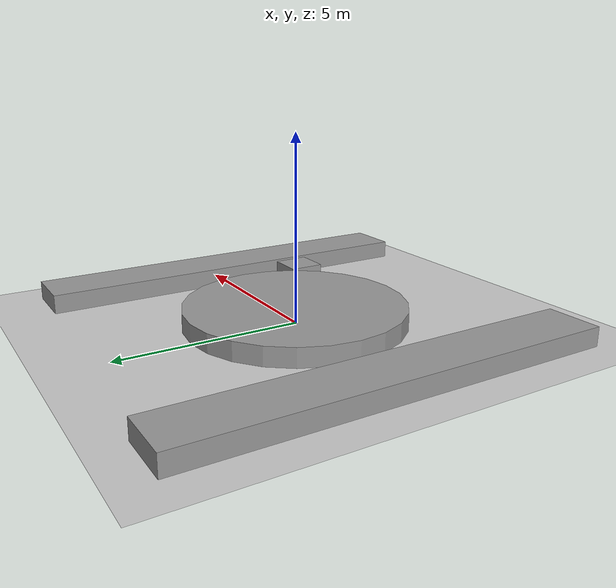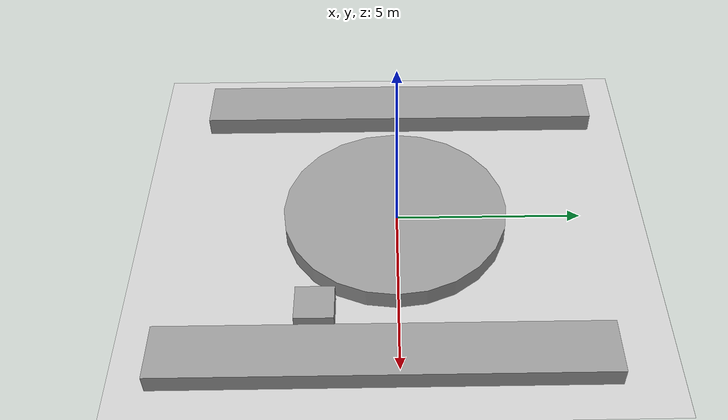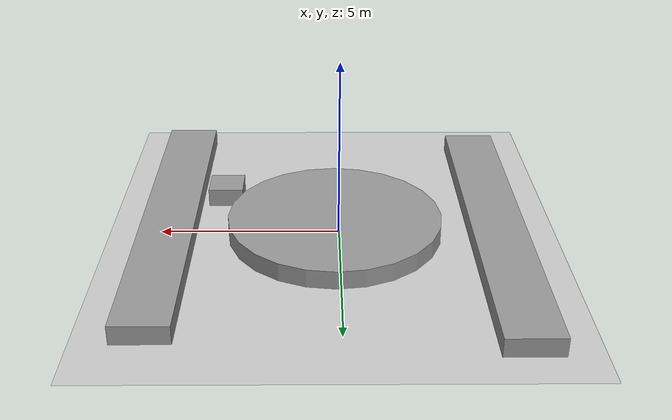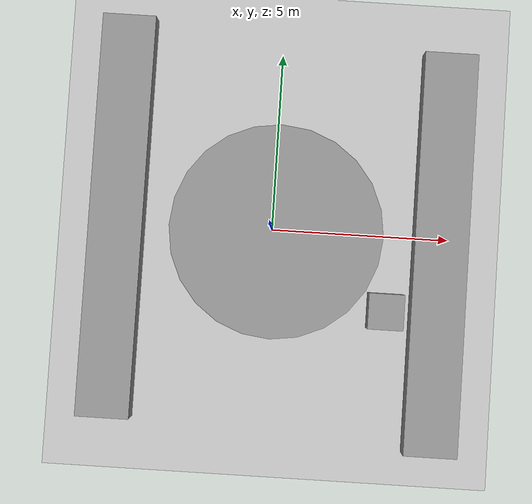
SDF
<sdf version="1.6">
 <world name="default">
  <light name="sun" type="directional">
   <pose>0 0 10 0 -0 0</pose>
   <diffuse>0.8 0.8 0.8 1</diffuse>
   <specular>0.1 0.1 0.1 1</specular>
   <attenuation>
    <range>1000</range>
    <constant>0.9</constant>
    <linear>0.01</linear>
    <quadratic>0.001</quadratic>
   </attenuation>
   <direction>-0.5 0.5 -1</direction>
  </light>
  <model name="ground_plane">
   <static>1</static>
   <link name="link">
    <collision name="collision">
     <geometry><plane><normal>0 0 1</normal><size>100 100</size></plane></geometry>
     <surface><friction><ode><mu>100</mu><mu2>50</mu2></ode></friction></surface>
    </collision>
    <visual name="visual">
     <cast_shadows>0</cast_shadows>
     <geometry><plane><normal>0 0 1</normal><size>100 100</size></plane></geometry>
     <material>
      <script><uri>file://media/materials/scripts/gazebo.material</uri><name>Gazebo/Grey</name></script>
     </material>
    </visual>
   </link>
  </model>
  <gravity>0 0 -9.8</gravity>
  <magnetic_field>6e-06 2.3e-05 -4.2e-05</magnetic_field>
  <atmosphere type="adiabatic"/>
  <physics name="default_physics" default="0" type="ode">
   <max_step_size>0.001</max_step_size>
   <real_time_factor>1</real_time_factor>
   <real_time_update_rate>1000</real_time_update_rate>
  </physics>
  <scene><ambient>0.4 0.4 0.4 1</ambient><background>0.7 0.7 0.7 1</background><shadows>1</shadows></scene>
  <spherical_coordinates>
   <surface_model>EARTH_WGS84</surface_model>
   <latitude_deg>0</latitude_deg>
   <longitude_deg>0</longitude_deg>
   <elevation>0</elevation>
   <heading_deg>0</heading_deg>
  </spherical_coordinates>
  <audio><device>default</device></audio>
  <model name="unit_cylinder">
   <link name="link">
    <inertial>
     <mass>1</mass>
     <inertia><ixx>0.145833</ixx><ixy>0</ixy><ixz>0</ixz><iyy>0.145833</iyy><iyz>0</iyz><izz>0.125</izz></inertia>
    </inertial>
    <visual name="visual">
     <geometry><cylinder><radius>2.99181</radius><length>1</length></cylinder></geometry>
     <material>
      <script><name>Gazebo/Grey</name><uri>file://media/materials/scripts/gazebo.material</uri></script>
     </material>
    </visual>
    <collision name="collision">
     <geometry><cylinder><radius>2.99181</radius><length>1</length></cylinder></geometry>
     <surface>
      <friction>
       <ode><mu>1</mu><mu2>1</mu2><fdir1>0 0 0</fdir1><slip1>0</slip1><slip2>0</slip2></ode>
       <torsional>
        <coefficient>1</coefficient>
        <patch_radius>0</patch_radius>
        <surface_radius>0</surface_radius>
        <use_patch_radius>1</use_patch_radius>
        <ode><slip>0</slip></ode>
       </torsional>
      </friction>
      <bounce><restitution_coefficient>0</restitution_coefficient><threshold>1e+06</threshold></bounce>
      <contact>
       <collide_without_contact>0</collide_without_contact>
       <collide_without_contact_bitmask>1</collide_without_contact_bitmask>
       <collide_bitmask>1</collide_bitmask>
       <ode>
        <soft_cfm>0</soft_cfm>
        <soft_erp>0.2</soft_erp>
        <kp>1e+13</kp>
        <kd>1</kd>
        <max_vel>0.01</max_vel>
        <min_depth>0</min_depth>
       </ode>
       <bullet>
        <split_impulse>1</split_impulse>
        <split_impulse_penetration_threshold>-0.01</split_impulse_penetration_threshold>
        <soft_cfm>0</soft_cfm>
        <soft_erp>0.2</soft_erp>
        <kp>1e+13</kp>
        <kd>1</kd>
       </bullet>
      </contact>
     </surface>
    </collision>
   </link>
   <static>1</static>
   <pose>0.11731 -0.051632 0 0 -0 0</pose>
  </model>
  <model name="unit_box_long">
   <link name="link">
    <inertial>
     <mass>1</mass>
     <inertia>
      <ixx>0.166667</ixx>
      <ixy>0</ixy>
      <ixz>0</ixz>
      <iyy>0.166667</iyy>
      <iyz>0</iyz>
      <izz>0.166667</izz>
     </inertia>
    </inertial>
    <visual name="visual">
     <geometry><box><size>1.49801 11.278 1</size></box></geometry>
     <material>
      <script><name>Gazebo/Grey</name><uri>file://media/materials/scripts/gazebo.material</uri></script>
     </material>
    </visual>
    <collision name="collision">
     <geometry><box><size>1.49801 11.278 1</size></box></geometry>
     <surface>
      <friction>
       <ode><mu>1</mu><mu2>1</mu2><fdir1>0 0 0</fdir1><slip1>0</slip1><slip2>0</slip2></ode>
       <torsional>
        <coefficient>1</coefficient>
        <patch_radius>0</patch_radius>
        <surface_radius>0</surface_radius>
        <use_patch_radius>1</use_patch_radius>
        <ode><slip>0</slip></ode>
       </torsional>
      </friction>
      <bounce><restitution_coefficient>0</restitution_coefficient><threshold>1e+06</threshold></bounce>
      <contact>
       <collide_without_contact>0</collide_without_contact>
       <collide_without_contact_bitmask>1</collide_without_contact_bitmask>
       <collide_bitmask>1</collide_bitmask>
       <ode>
        <soft_cfm>0</soft_cfm>
        <soft_erp>0.2</soft_erp>
        <kp>1e+13</kp>
        <kd>1</kd>
        <max_vel>0.01</max_vel>
        <min_depth>0</min_depth>
       </ode>
       <bullet>
        <split_impulse>1</split_impulse>
        <split_impulse_penetration_threshold>-0.01</split_impulse_penetration_threshold>
        <soft_cfm>0</soft_cfm>
        <soft_erp>0.2</soft_erp>
        <kp>1e+13</kp>
        <kd>1</kd>
       </bullet>
      </contact>
     </surface>
    </collision>
   </link>
   <static>1</static>
   <pose>-4.37521 0.14661 0 0 -0 0</pose>
  </model>
  <model name="unit_box_long_0">
   <link name="link">
    <inertial>
     <mass>1</mass>
     <inertia>
      <ixx>0.166667</ixx>
      <ixy>0</ixy>
      <ixz>0</ixz>
      <iyy>0.166667</iyy>
      <iyz>0</iyz>
      <izz>0.166667</izz>
     </inertia>
    </inertial>
    <visual name="visual">
     <geometry><box><size>1.49801 11.278 1</size></box></geometry>
     <material>
      <script><name>Gazebo/Grey</name><uri>file://media/materials/scripts/gazebo.material</uri></script>
     </material>
    </visual>
    <collision name="collision">
     <geometry><box><size>1.49801 11.278 1</size></box></geometry>
     <surface>
      <friction>
       <ode><mu>1</mu><mu2>1</mu2><fdir1>0 0 0</fdir1><slip1>0</slip1><slip2>0</slip2></ode>
       <torsional>
        <coefficient>1</coefficient>
        <patch_radius>0</patch_radius>
        <surface_radius>0</surface_radius>
        <use_patch_radius>1</use_patch_radius>
        <ode><slip>0</slip></ode>
       </torsional>
      </friction>
      <bounce><restitution_coefficient>0</restitution_coefficient><threshold>1e+06</threshold></bounce>
      <contact>
       <collide_without_contact>0</collide_without_contact>
       <collide_without_contact_bitmask>1</collide_without_contact_bitmask>
       <collide_bitmask>1</collide_bitmask>
       <ode>
        <soft_cfm>0</soft_cfm>
        <soft_erp>0.2</soft_erp>
        <kp>1e+13</kp>
        <kd>1</kd>
        <max_vel>0.01</max_vel>
        <min_depth>0</min_depth>
       </ode>
       <bullet>
        <split_impulse>1</split_impulse>
        <split_impulse_penetration_threshold>-0.01</split_impulse_penetration_threshold>
        <soft_cfm>0</soft_cfm>
        <soft_erp>0.2</soft_erp>
        <kp>1e+13</kp>
        <kd>1</kd>
       </bullet>
      </contact>
     </surface>
    </collision>
   </link>
   <static>1</static>
   <pose>4.74529 -0.373774 0 0 -0 0</pose>
  </model>
  <model name="unit_box">
   <link name="link">
    <inertial>
     <mass>1</mass>
     <inertia>
      <ixx>0.166667</ixx>
      <ixy>0</ixy>
      <ixz>0</ixz>
      <iyy>0.166667</iyy>
      <iyz>0</iyz>
      <izz>0.166667</izz>
     </inertia>
    </inertial>
    <visual name="visual">
     <geometry><box><size>1 1 1</size></box></geometry>
     <material>
      <script><name>Gazebo/Grey</name><uri>file://media/materials/scripts/gazebo.material</uri></script>
     </material>
    </visual>
    <collision name="collision">
     <geometry><box><size>1 1 1</size></box></geometry>
     <surface>
      <friction>
       <ode><mu>1</mu><mu2>1</mu2><fdir1>0 0 0</fdir1><slip1>0</slip1><slip2>0</slip2></ode>
       <torsional>
        <coefficient>1</coefficient>
        <patch_radius>0</patch_radius>
        <surface_radius>0</surface_radius>
        <use_patch_radius>1</use_patch_radius>
        <ode><slip>0</slip></ode>
       </torsional>
      </friction>
      <bounce><restitution_coefficient>0</restitution_coefficient><threshold>1e+06</threshold></bounce>
      <contact>
       <collide_without_contact>0</collide_without_contact>
       <collide_without_contact_bitmask>1</collide_without_contact_bitmask>
       <collide_bitmask>1</collide_bitmask>
       <ode>
        <soft_cfm>0</soft_cfm>
        <soft_erp>0.2</soft_erp>
        <kp>1e+13</kp>
        <kd>1</kd>
        <max_vel>0.01</max_vel>
        <min_depth>0</min_depth>
       </ode>
       <bullet>
        <split_impulse>1</split_impulse>
        <split_impulse_penetration_threshold>-0.01</split_impulse_penetration_threshold>
        <soft_cfm>0</soft_cfm>
        <soft_erp>0.2</soft_erp>
        <kp>1e+13</kp>
        <kd>1</kd>
       </bullet>
      </contact>
     </surface>
    </collision>
   </link>
   <static>1</static>
   <pose>3.30941 -2.09425 0 0 -0 0</pose>
  </model>
 </world>
</sdf>
